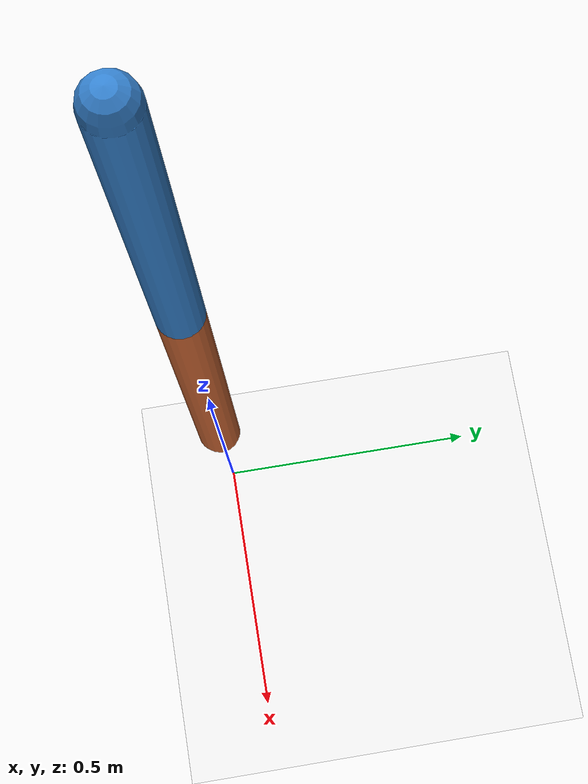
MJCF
<mujoco model="double_pendulum">
  <compiler angle="radian" coordinate="local"/>

  <option timestep="0.002" gravity="0 0 -9.81" integrator="RK4"/>

  <visual>
    <headlight diffuse="0.8 0.8 0.8" ambient="0.2 0.2 0.2" specular="0 0 0"/>
  </visual>

  <default>
    <joint limited="false" damping="0.02"/>
    <geom type="capsule" rgba="0.2 0.5 0.8 1" friction="1 0.1 0.1" density="800"/>
  </default>

  <worldbody>
    <light pos="0 0 3"/>
    <geom name="ground" type="plane" size="2 2 0.1" rgba="0.9 0.9 0.9 1"/>

    <camera name="main" pos="2.2 -2.2 1.8" xyaxes="0.7 0.7 0  -0.3 0.3 0.9"/>

    <!-- Fixed support point -->
    <body name="base" pos="0 0 1.5">
      <site name="pivot" pos="0 0 0" size="0.01" rgba="0 0 0 1"/>

      <!-- First link (capsule from base to -Z) -->
      <body name="link1">
        <joint name="hinge1" type="hinge" axis="0 1 0"/>
        <geom name="rod1" fromto="0 0 0  0 0 -0.6" size="0.04" rgba="0.2 0.5 0.8 1"/>

        <!-- Second link starts at the end of the first -->
        <body name="link2" pos="0 0 -0.6">
          <joint name="hinge2" type="hinge" axis="0 1 0"/>
          <geom name="rod2" fromto="0 0 0  0 0 -0.6" size="0.04" rgba="0.8 0.4 0.2 1"/>
        </body>
      </body>
    </body>
  </worldbody>
</mujoco>
